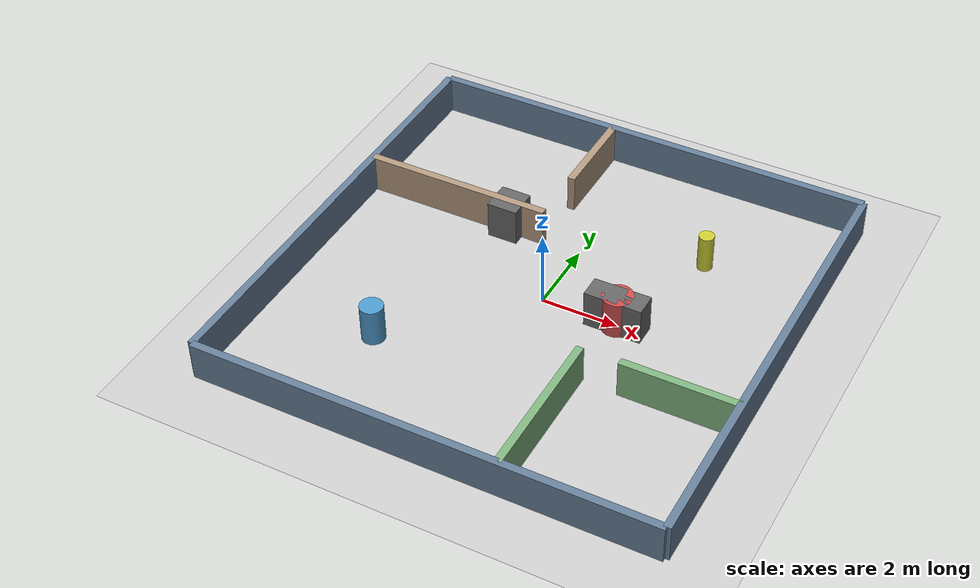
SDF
<?xml version="1.0" ?>
<sdf version="1.9">
  <world name="default">
    <!-- 为场景添加物理引擎 -->
    <plugin filename="gz-sim-physics-system" name="gz::sim::systems::Physics">
        <engine>dart</engine>
    </plugin>
    <!-- 用户命令系统 -->
    <plugin filename="gz-sim-user-commands-system" name="gz::sim::systems::UserCommands"></plugin>
    <!-- 场景广播系统 -->
    <plugin filename="gz-sim-scene-broadcaster-system" name="gz::sim::systems::SceneBroadcaster"></plugin>
    <!-- 传感器系统 -->
    <plugin filename="gz-sim-sensors-system" name="gz::sim::systems::Sensors">
      <render_engine>ogre2</render_engine>
    </plugin>

<scene>
      <ambient>0.6 0.6 0.6 1</ambient>
      <background>0.8 0.8 0.8 1</background>
      <shadows>true</shadows>
    </scene>

    <light type="directional" name="sun">
      <cast_shadows>true</cast_shadows>
      <pose>0 0 10 0 0 0</pose>
      <diffuse>0.9 0.9 0.9 1</diffuse>
      <specular>0.2 0.2 0.2 1</specular>
      <attenuation>
        <range>1000</range>
        <constant>0.9</constant>
        <linear>0.01</linear>
        <quadratic>0.001</quadratic>
      </attenuation>
      <direction>-0.5 0.5 -0.9</direction>
    </light>

    <model name="ground_plane">
      <static>true</static>
      <link name="link">
        <collision name="collision">
          <geometry>
            <plane>
              <normal>0 0 1</normal>
              <size>100 100</size>
            </plane>
          </geometry>
        </collision>
        <visual name="visual">
          <geometry>
            <plane>
              <normal>0 0 1</normal>
              <size>100 100</size>
            </plane>
          </geometry>
          <material>
            <ambient>0.8 0.8 0.8 1</ambient>
            <diffuse>0.8 0.8 0.8 1</diffuse>
          </material>
        </visual>
      </link>
    </model>

    <model name="training_arena">
      <static>true</static>

      <link name="wall_north">
        <pose>0 6 0.5 0 0 0</pose> <collision name="c"><geometry><box><size>12 0.2 1.0</size></box></geometry></collision>
        <visual name="v"><geometry><box><size>12 0.2 1.0</size></box></geometry>
          <material><ambient>0.4 0.5 0.6 1</ambient></material>
        </visual>
      </link>
      <link name="wall_south">
        <pose>0 -6 0.5 0 0 0</pose>
        <collision name="c"><geometry><box><size>12 0.2 1.0</size></box></geometry></collision>
        <visual name="v"><geometry><box><size>12 0.2 1.0</size></box></geometry>
          <material><ambient>0.4 0.5 0.6 1</ambient></material>
        </visual>
      </link>
      <link name="wall_east">
        <pose>6 0 0.5 0 0 0</pose>
        <collision name="c"><geometry><box><size>0.2 12 1.0</size></box></geometry></collision>
        <visual name="v"><geometry><box><size>0.2 12 1.0</size></box></geometry>
          <material><ambient>0.4 0.5 0.6 1</ambient></material>
        </visual>
      </link>
      <link name="wall_west">
        <pose>-6 0 0.5 0 0 0</pose>
        <collision name="c"><geometry><box><size>0.2 12 1.0</size></box></geometry></collision>
        <visual name="v"><geometry><box><size>0.2 12 1.0</size></box></geometry>
          <material><ambient>0.4 0.5 0.6 1</ambient></material>
        </visual>
      </link>

      <link name="room1_wall_south">
        <pose>-3.5 2 0.5 0 0 0</pose>
        <collision name="c"><geometry><box><size>5 0.2 1.0</size></box></geometry></collision>
        <visual name="v"><geometry><box><size>5 0.2 1.0</size></box></geometry><material><ambient>0.7 0.6 0.5 1</ambient></material></visual>
      </link>
      <link name="room1_wall_east">
        <pose>-1 4.75 0.5 0 0 0</pose> <collision name="c"><geometry><box><size>0.2 2.5 1.0</size></box></geometry></collision>
        <visual name="v"><geometry><box><size>0.2 2.5 1.0</size></box></geometry><material><ambient>0.7 0.6 0.5 1</ambient></material></visual>
      </link>

      <link name="room2_wall_west">
        <pose>2 -4 0.5 0 0 0</pose>
        <collision name="c"><geometry><box><size>0.2 4 1.0</size></box></geometry></collision>
        <visual name="v"><geometry><box><size>0.2 4 1.0</size></box></geometry><material><ambient>0.5 0.7 0.5 1</ambient></material></visual>
      </link>
      <link name="room2_wall_north">
        <pose>4.5 -2 0.5 0 0 0</pose>
        <collision name="c"><geometry><box><size>3 0.2 1.0</size></box></geometry></collision>
        <visual name="v"><geometry><box><size>3 0.2 1.0</size></box></geometry><material><ambient>0.5 0.7 0.5 1</ambient></material></visual>
      </link>

      <link name="obstacle_cylinder_1">
        <pose>2 0 0.5 0 0 0</pose>
        <collision name="c"><geometry><cylinder><radius>0.4</radius><length>1.0</length></cylinder></geometry></collision>
        <visual name="v"><geometry><cylinder><radius>0.4</radius><length>1.0</length></cylinder></geometry>
          <material><ambient>0.8 0.3 0.3 1</ambient></material></visual>
      </link>
      <link name="obstacle_cylinder_2">
        <pose>-3 -3 0.5 0 0 0</pose>
        <collision name="c"><geometry><cylinder><radius>0.3</radius><length>1.0</length></cylinder></geometry></collision>
        <visual name="v"><geometry><cylinder><radius>0.3</radius><length>1.0</length></cylinder></geometry>
          <material><ambient>0.3 0.6 0.8 1</ambient></material></visual>
      </link>
      <link name="obstacle_cylinder_3">
        <pose>3 3 0.5 0 0 0</pose>
        <collision name="c"><geometry><cylinder><radius>0.2</radius><length>1.0</length></cylinder></geometry></collision>
        <visual name="v"><geometry><cylinder><radius>0.2</radius><length>1.0</length></cylinder></geometry>
          <material><ambient>0.8 0.8 0.2 1</ambient></material></visual>
      </link>

      <link name="obstacle_box_1">
        <pose>2 0 0.5 0 0 0</pose>
        <collision name="c"><geometry><box><size>1.5 0.6 1.0</size></box></geometry></collision>
        <visual name="v"><geometry><box><size>1.5 0.6 1.0</size></box></geometry>
          <material><ambient>0.4 0.4 0.4 1</ambient></material></visual>
      </link>
      <link name="obstacle_box_2">
        <pose>-2 2 0.5 0 0 0</pose>
        <collision name="c"><geometry><box><size>0.8 0.8 1.0</size></box></geometry></collision>
        <visual name="v"><geometry><box><size>0.8 0.8 1.0</size></box></geometry>
          <material><ambient>0.4 0.4 0.4 1</ambient></material></visual>
      </link>

    </model>
  </world>
</sdf>
